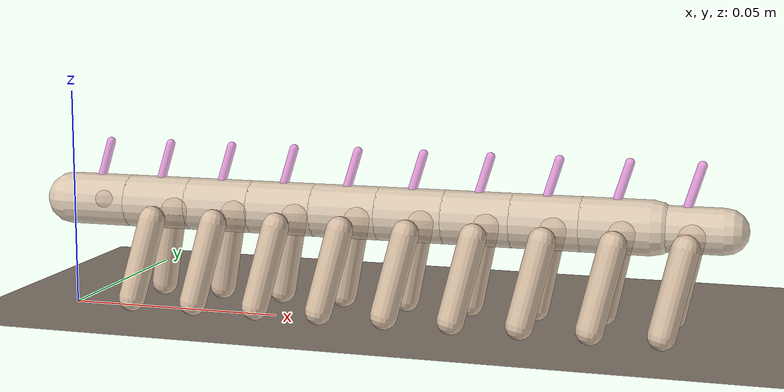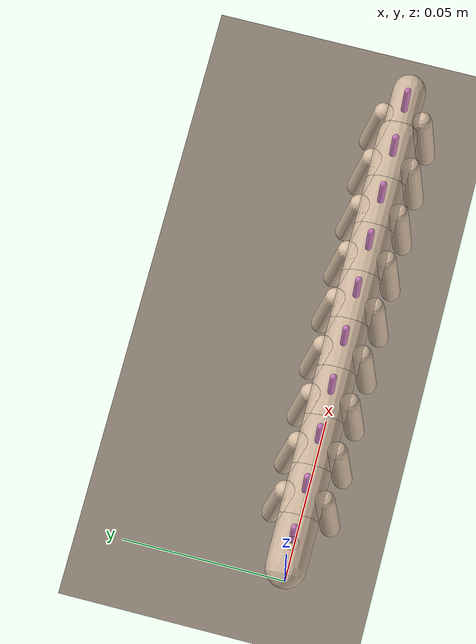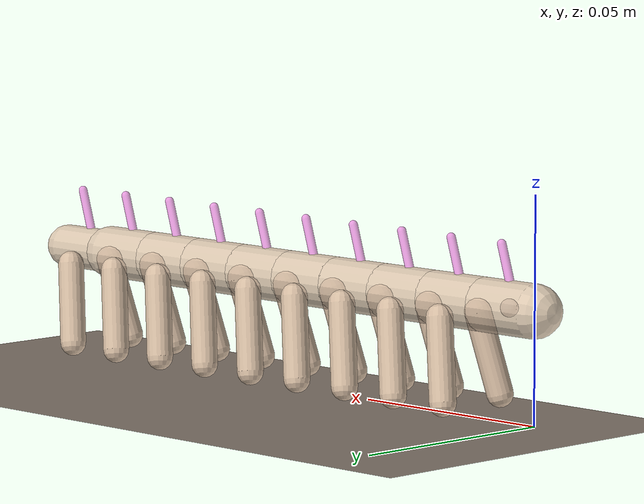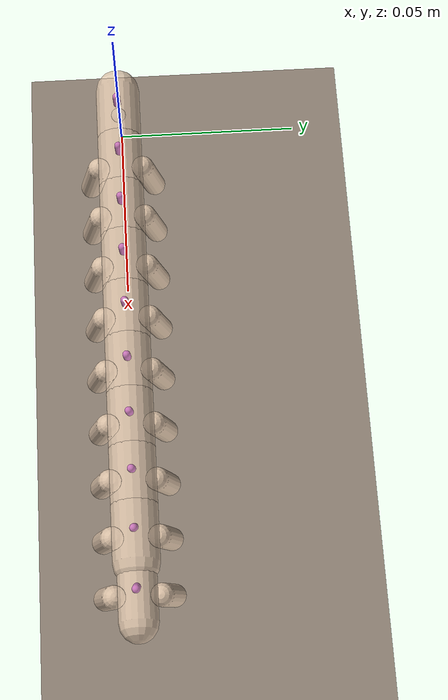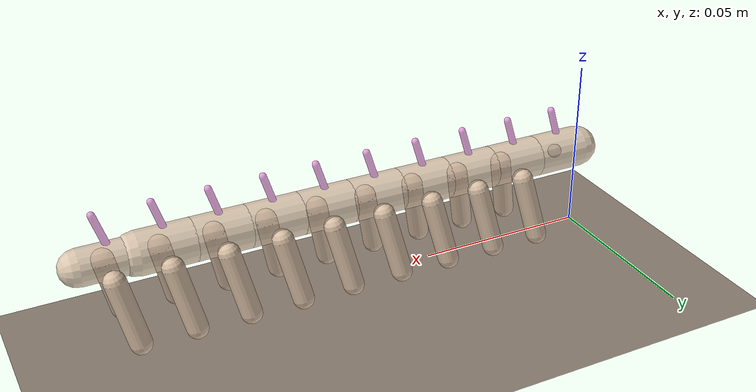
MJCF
<mujoco model="hallu_f">
  <compiler angle="radian" autolimits="true"/>

  <option timestep="0.002" gravity="0 0 -9.81" integrator="implicit">
    <flag contact="enable"/>
  </option>

  <size nconmax="200" njmax="400"/>

  <default>
    <default class="body_joint">
      <joint type="hinge" damping="0.015" stiffness="0.08" limited="true"
             range="-0.15 0.15"/>
    </default>
    <!-- lobopod legs: pitch axis (0 1 0) so legs swing fore/aft -->
    <default class="leg_joint">
      <joint type="hinge" axis="0 1 0" damping="0.005" stiffness="0.02"
             limited="true" range="-0.3 0.8"/>
    </default>
    <default class="leg_geom">
      <geom type="capsule" size="0.003" rgba="0.85 0.75 0.65 0.9"
            density="1100" friction="1.5 0.01 0.01" condim="4"
            contype="1" conaffinity="1"/>
    </default>
    <default class="body_geom">
      <geom type="capsule" rgba="0.9 0.8 0.7 0.85"
            density="1100" friction="0.8 0.01 0.01" condim="3"
            contype="1" conaffinity="1"/>
    </default>
    <default class="spine_geom">
      <geom type="capsule" size="0.001 0.008" rgba="0.95 0.5 0.9 0.7"
            contype="0" conaffinity="0"/>
    </default>
    <default class="pneumatic">
      <general gainprm="0.009" biasprm="0 -0.009 0" dyntype="filter" dynprm="0.06"/>
    </default>
  </default>

  <asset>
    <texture name="ground" type="2d" builtin="checker" width="512" height="512"
             rgb1="0.6 0.55 0.5" rgb2="0.5 0.45 0.4"/>
    <material name="ground_mat" texture="ground" texrepeat="8 8"/>
  </asset>

  <worldbody>
    <geom name="floor" type="plane" size="2 2 0.01" material="ground_mat"
          contype="1" conaffinity="1" friction="1.0 0.005 0.001"/>

    <!-- HALLU-F: head + 9 leg-bearing segments, ~150mm total -->
    <body name="head" pos="0 0 0.025">
      <freejoint name="root"/>
      <geom class="body_geom" fromto="0 0 0 0.015 0 0" size="0.006"/>
      <geom class="spine_geom" pos="0.0075 0 0.006" euler="0 0.3 0"/>
      <site name="imu" pos="0.0075 0 0" size="0.002"/>

      <!-- seg1 -->
      <body name="seg1" pos="0.015 0 0">
        <joint class="body_joint" name="spine_1" axis="0 1 0"/>
        <joint class="body_joint" name="yaw_1" axis="0 0 1"/>
        <geom class="body_geom" fromto="0 0 0 0.015 0 0" size="0.006"/>
        <geom class="spine_geom" pos="0.0075 0 0.006" euler="0 0.3 0"/>
        <body name="leg_1L" pos="0.0075 0.006 -0.003">
          <joint class="leg_joint" name="leg_1L_j"/>
          <geom class="leg_geom" fromto="0 0 0 -0.004 0.003 -0.018"/>
        </body>
        <body name="leg_1R" pos="0.0075 -0.006 -0.003">
          <joint class="leg_joint" name="leg_1R_j"/>
          <geom class="leg_geom" fromto="0 0 0 -0.004 -0.003 -0.018"/>
        </body>

        <!-- seg2 -->
        <body name="seg2" pos="0.015 0 0">
          <joint class="body_joint" name="spine_2" axis="0 1 0"/>
          <joint class="body_joint" name="yaw_2" axis="0 0 1"/>
          <geom class="body_geom" fromto="0 0 0 0.015 0 0" size="0.006"/>
          <geom class="spine_geom" pos="0.0075 0 0.006" euler="0 0.3 0"/>
          <body name="leg_2L" pos="0.0075 0.006 -0.003">
            <joint class="leg_joint" name="leg_2L_j"/>
            <geom class="leg_geom" fromto="0 0 0 -0.004 0.003 -0.018"/>
          </body>
          <body name="leg_2R" pos="0.0075 -0.006 -0.003">
            <joint class="leg_joint" name="leg_2R_j"/>
            <geom class="leg_geom" fromto="0 0 0 -0.004 -0.003 -0.018"/>
          </body>

          <!-- seg3 -->
          <body name="seg3" pos="0.015 0 0">
            <joint class="body_joint" name="spine_3" axis="0 1 0"/>
            <joint class="body_joint" name="yaw_3" axis="0 0 1"/>
            <geom class="body_geom" fromto="0 0 0 0.015 0 0" size="0.006"/>
            <geom class="spine_geom" pos="0.0075 0 0.006" euler="0 0.3 0"/>
            <body name="leg_3L" pos="0.0075 0.006 -0.003">
              <joint class="leg_joint" name="leg_3L_j"/>
              <geom class="leg_geom" fromto="0 0 0 -0.004 0.003 -0.018"/>
            </body>
            <body name="leg_3R" pos="0.0075 -0.006 -0.003">
              <joint class="leg_joint" name="leg_3R_j"/>
              <geom class="leg_geom" fromto="0 0 0 -0.004 -0.003 -0.018"/>
            </body>

            <!-- seg4 -->
            <body name="seg4" pos="0.015 0 0">
              <joint class="body_joint" name="spine_4" axis="0 1 0"/>
              <joint class="body_joint" name="yaw_4" axis="0 0 1"/>
              <geom class="body_geom" fromto="0 0 0 0.015 0 0" size="0.006"/>
              <geom class="spine_geom" pos="0.0075 0 0.006" euler="0 0.3 0"/>
              <body name="leg_4L" pos="0.0075 0.006 -0.003">
                <joint class="leg_joint" name="leg_4L_j"/>
                <geom class="leg_geom" fromto="0 0 0 -0.004 0.003 -0.018"/>
              </body>
              <body name="leg_4R" pos="0.0075 -0.006 -0.003">
                <joint class="leg_joint" name="leg_4R_j"/>
                <geom class="leg_geom" fromto="0 0 0 -0.004 -0.003 -0.018"/>
              </body>

              <!-- seg5 -->
              <body name="seg5" pos="0.015 0 0">
                <joint class="body_joint" name="spine_5" axis="0 1 0"/>
                <joint class="body_joint" name="yaw_5" axis="0 0 1"/>
                <geom class="body_geom" fromto="0 0 0 0.015 0 0" size="0.006"/>
                <geom class="spine_geom" pos="0.0075 0 0.006" euler="0 0.3 0"/>
                <body name="leg_5L" pos="0.0075 0.006 -0.003">
                  <joint class="leg_joint" name="leg_5L_j"/>
                  <geom class="leg_geom" fromto="0 0 0 -0.004 0.003 -0.018"/>
                </body>
                <body name="leg_5R" pos="0.0075 -0.006 -0.003">
                  <joint class="leg_joint" name="leg_5R_j"/>
                  <geom class="leg_geom" fromto="0 0 0 -0.004 -0.003 -0.018"/>
                </body>

                <!-- seg6 -->
                <body name="seg6" pos="0.015 0 0">
                  <joint class="body_joint" name="spine_6" axis="0 1 0"/>
                  <joint class="body_joint" name="yaw_6" axis="0 0 1"/>
                  <geom class="body_geom" fromto="0 0 0 0.015 0 0" size="0.006"/>
                  <geom class="spine_geom" pos="0.0075 0 0.006" euler="0 0.3 0"/>
                  <body name="leg_6L" pos="0.0075 0.006 -0.003">
                    <joint class="leg_joint" name="leg_6L_j"/>
                    <geom class="leg_geom" fromto="0 0 0 -0.004 0.003 -0.018"/>
                  </body>
                  <body name="leg_6R" pos="0.0075 -0.006 -0.003">
                    <joint class="leg_joint" name="leg_6R_j"/>
                    <geom class="leg_geom" fromto="0 0 0 -0.004 -0.003 -0.018"/>
                  </body>

                  <!-- seg7 -->
                  <body name="seg7" pos="0.015 0 0">
                    <joint class="body_joint" name="spine_7" axis="0 1 0"/>
                    <joint class="body_joint" name="yaw_7" axis="0 0 1"/>
                    <geom class="body_geom" fromto="0 0 0 0.015 0 0" size="0.006"/>
                    <geom class="spine_geom" pos="0.0075 0 0.006" euler="0 0.3 0"/>
                    <body name="leg_7L" pos="0.0075 0.006 -0.003">
                      <joint class="leg_joint" name="leg_7L_j"/>
                      <geom class="leg_geom" fromto="0 0 0 -0.004 0.003 -0.018"/>
                    </body>
                    <body name="leg_7R" pos="0.0075 -0.006 -0.003">
                      <joint class="leg_joint" name="leg_7R_j"/>
                      <geom class="leg_geom" fromto="0 0 0 -0.004 -0.003 -0.018"/>
                    </body>

                    <!-- seg8 -->
                    <body name="seg8" pos="0.015 0 0">
                      <joint class="body_joint" name="spine_8" axis="0 1 0"/>
                      <joint class="body_joint" name="yaw_8" axis="0 0 1"/>
                      <geom class="body_geom" fromto="0 0 0 0.015 0 0" size="0.006"/>
                      <geom class="spine_geom" pos="0.0075 0 0.006" euler="0 0.3 0"/>
                      <body name="leg_8L" pos="0.0075 0.006 -0.003">
                        <joint class="leg_joint" name="leg_8L_j"/>
                        <geom class="leg_geom" fromto="0 0 0 -0.004 0.003 -0.018"/>
                      </body>
                      <body name="leg_8R" pos="0.0075 -0.006 -0.003">
                        <joint class="leg_joint" name="leg_8R_j"/>
                        <geom class="leg_geom" fromto="0 0 0 -0.004 -0.003 -0.018"/>
                      </body>

                      <!-- seg9 / tail -->
                      <body name="seg9" pos="0.015 0 0">
                        <joint class="body_joint" name="spine_9" axis="0 1 0"/>
                        <joint class="body_joint" name="yaw_9" axis="0 0 1"/>
                        <geom class="body_geom" fromto="0 0 0 0.015 0 0" size="0.005"/>
                        <geom class="spine_geom" pos="0.0075 0 0.006" euler="0 0.3 0"/>
                        <body name="leg_9L" pos="0.0075 0.006 -0.003">
                          <joint class="leg_joint" name="leg_9L_j"/>
                          <geom class="leg_geom" fromto="0 0 0 -0.004 0.003 -0.018"/>
                        </body>
                        <body name="leg_9R" pos="0.0075 -0.006 -0.003">
                          <joint class="leg_joint" name="leg_9R_j"/>
                          <geom class="leg_geom" fromto="0 0 0 -0.004 -0.003 -0.018"/>
                        </body>
                      </body>
                    </body>
                  </body>
                </body>
              </body>
            </body>
          </body>
        </body>
      </body>
    </body>
  </worldbody>

  <actuator>
    <general class="pneumatic" name="valve_1" joint="leg_1L_j" ctrlrange="0 1"/>
    <general class="pneumatic" name="valve_1R" joint="leg_1R_j" ctrlrange="0 1"/>
    <general class="pneumatic" name="valve_2" joint="leg_2L_j" ctrlrange="0 1"/>
    <general class="pneumatic" name="valve_2R" joint="leg_2R_j" ctrlrange="0 1"/>
    <general class="pneumatic" name="valve_3" joint="leg_3L_j" ctrlrange="0 1"/>
    <general class="pneumatic" name="valve_3R" joint="leg_3R_j" ctrlrange="0 1"/>
    <general class="pneumatic" name="valve_4" joint="leg_4L_j" ctrlrange="0 1"/>
    <general class="pneumatic" name="valve_4R" joint="leg_4R_j" ctrlrange="0 1"/>
    <general class="pneumatic" name="valve_5" joint="leg_5L_j" ctrlrange="0 1"/>
    <general class="pneumatic" name="valve_5R" joint="leg_5R_j" ctrlrange="0 1"/>
    <general class="pneumatic" name="valve_6" joint="leg_6L_j" ctrlrange="0 1"/>
    <general class="pneumatic" name="valve_6R" joint="leg_6R_j" ctrlrange="0 1"/>
    <general class="pneumatic" name="valve_7" joint="leg_7L_j" ctrlrange="0 1"/>
    <general class="pneumatic" name="valve_7R" joint="leg_7R_j" ctrlrange="0 1"/>
    <general class="pneumatic" name="valve_8" joint="leg_8L_j" ctrlrange="0 1"/>
    <general class="pneumatic" name="valve_8R" joint="leg_8R_j" ctrlrange="0 1"/>
    <general class="pneumatic" name="valve_9" joint="leg_9L_j" ctrlrange="0 1"/>
    <general class="pneumatic" name="valve_9R" joint="leg_9R_j" ctrlrange="0 1"/>
  </actuator>

  <sensor>
    <framepos name="head_pos" objtype="site" objname="imu"/>
    <framequat name="head_quat" objtype="site" objname="imu"/>
    <framelinvel name="head_vel" objtype="site" objname="imu"/>
    <gyro name="gyro" site="imu"/>
    <accelerometer name="accel" site="imu"/>
  </sensor>
</mujoco>
